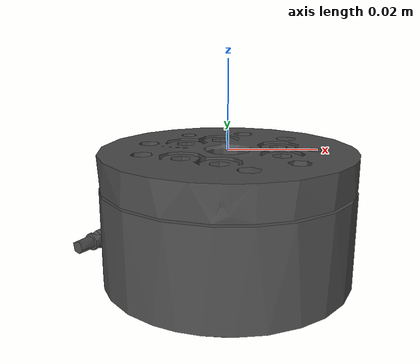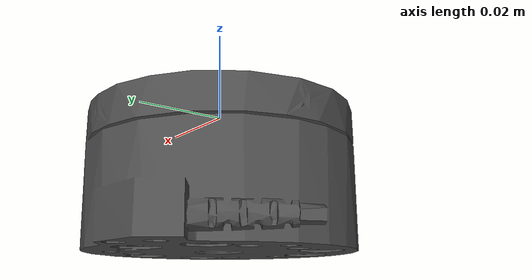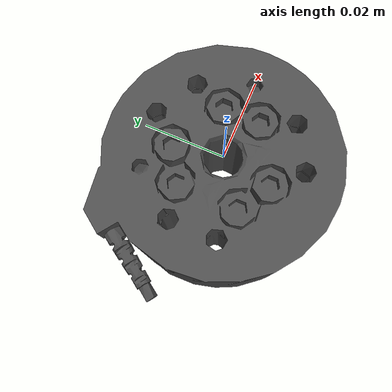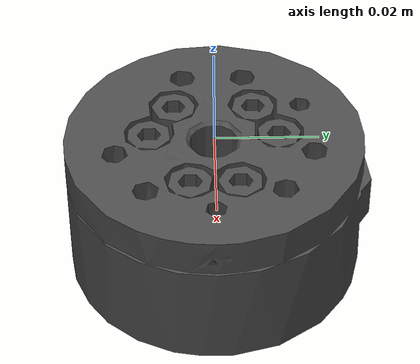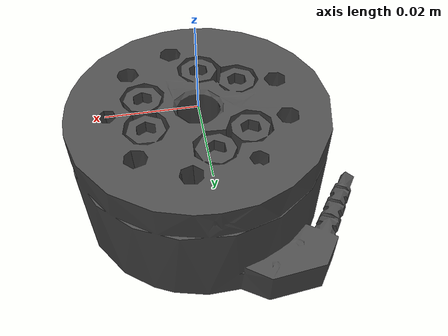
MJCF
<mujoco model="foot-ft">
  <default>
    <default class="visual">
      <geom group="2" type="mesh" contype="0" conaffinity="0"/>
    </default>
    <default class="collision">
      <geom group="3" type="mesh"/>
    </default>
  </default>
  <asset>
    <material name="mtl_foot-ft" specular="0.20000000000000004" shininess="1.0" rgba="0.29803922 0.29803922 0.29803922 1.0"/>
    <mesh file="foot-ft.obj"/>
  </asset>
  <worldbody>
    <body name="foot-ft">
      <geom material="mtl_foot-ft" mesh="foot-ft" class="visual"/>
      <geom mesh="foot-ft" class="collision"/>
    </body>
  </worldbody>
</mujoco>
